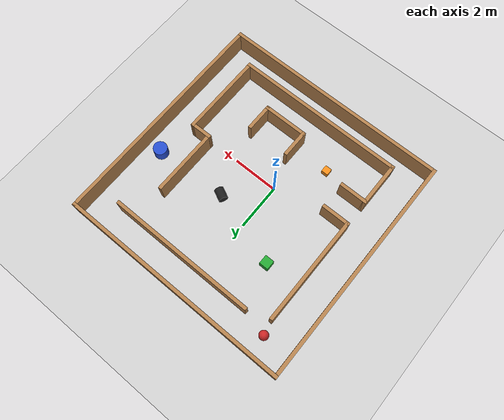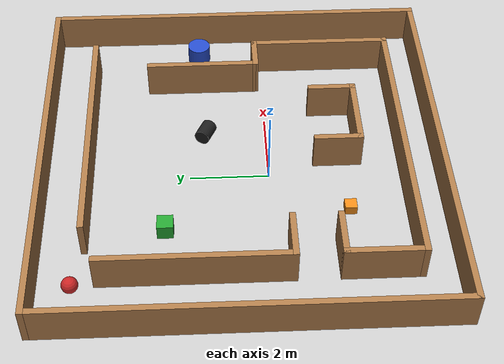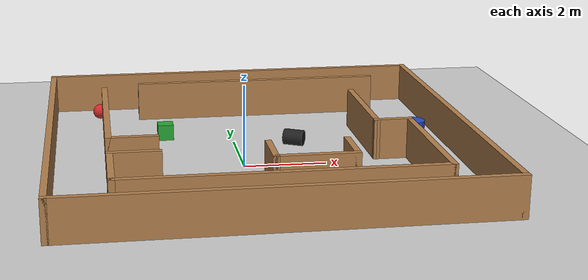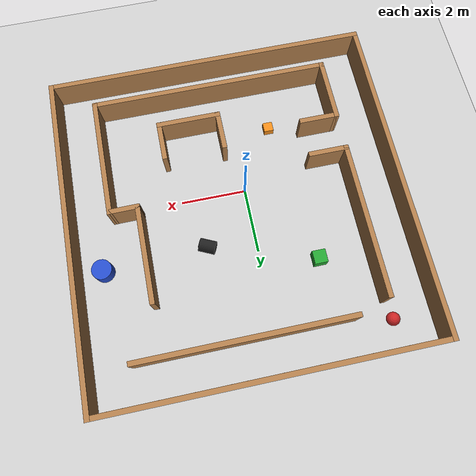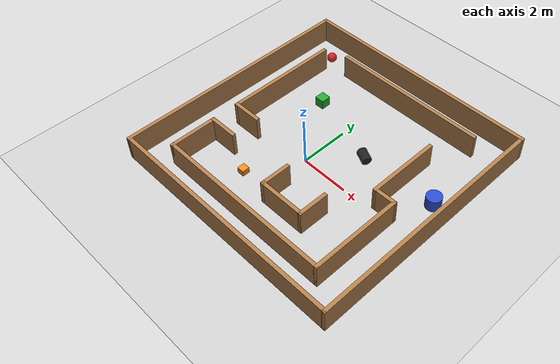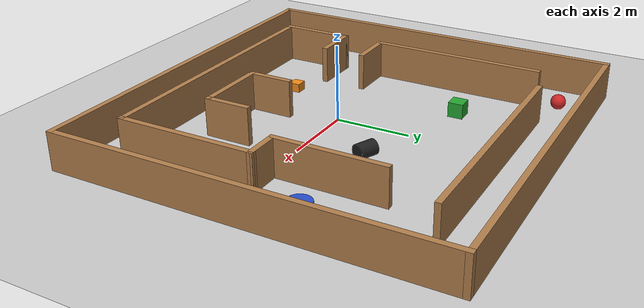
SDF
<sdf version="1.7">
 <world name="default">
  <light name="sun" type="directional">
   <pose>0 0 10 0 -0 0</pose>
   <diffuse>0.8 0.8 0.8 1</diffuse>
   <specular>0.2 0.2 0.2 1</specular>
   <attenuation>
    <range>1000</range>
    <constant>0.9</constant>
    <linear>0.01</linear>
    <quadratic>0.001</quadratic>
   </attenuation>
   <direction>-0.5 0.1 -0.9</direction>
   <spot><inner_angle>0</inner_angle><outer_angle>0</outer_angle><falloff>0</falloff></spot>
  </light>
  <model name="ground_plane">
   <static>1</static>
   <link name="link">
    <collision name="collision">
     <geometry><plane><normal>0 0 1</normal><size>100 100</size></plane></geometry>
     <surface><friction><ode><mu>100</mu><mu2>50</mu2></ode></friction></surface>
    </collision>
    <visual name="visual">
     <cast_shadows>0</cast_shadows>
     <geometry><plane><normal>0 0 1</normal><size>100 100</size></plane></geometry>
     <material>
      <script><uri>file://media/materials/scripts/gazebo.material</uri><name>Gazebo/Grey</name></script>
     </material>
    </visual>
   </link>
  </model>
  <gravity>0 0 -9.8</gravity>
  <magnetic_field>6e-06 2.3e-05 -4.2e-05</magnetic_field>
  <atmosphere type="adiabatic"/>
  <physics type="ode">
   <max_step_size>0.001</max_step_size>
   <real_time_factor>1</real_time_factor>
   <real_time_update_rate>1000</real_time_update_rate>
  </physics>
  <scene><ambient>0.4 0.4 0.4 1</ambient><background>0.7 0.7 0.7 1</background><shadows>1</shadows></scene>
  <audio><device>default</device></audio>
  <spherical_coordinates>
   <surface_model>EARTH_WGS84</surface_model>
   <latitude_deg>0</latitude_deg>
   <longitude_deg>0</longitude_deg>
   <elevation>0</elevation>
   <heading_deg>0</heading_deg>
  </spherical_coordinates>
  <model name="rc">
   <pose>0.39192 0.670732 0 0 -0 0</pose>
   <link name="Wall_2">
    <collision name="Wall_2_Collision">
     <geometry><box><size>10.15 0.15 1</size></box></geometry>
     <pose>0 0 0.5 0 -0 0</pose>
    </collision>
    <visual name="Wall_2_Visual">
     <pose>0 0 0.5 0 -0 0</pose>
     <geometry><box><size>10.15 0.15 1</size></box></geometry>
     <material>
      <script><uri>file://media/materials/scripts/gazebo.material</uri><name>Gazebo/Wood</name></script>
      <ambient>1 1 1 1</ambient>
     </material>
     <meta><layer>0</layer></meta>
    </visual>
    <pose>0 -5 0 0 -0 0</pose>
   </link>
   <link name="Wall_27">
    <collision name="Wall_27_Collision">
     <geometry><box><size>6.5 0.15 1</size></box></geometry>
     <pose>0 0 0.5 0 -0 0</pose>
    </collision>
    <visual name="Wall_27_Visual">
     <pose>0 0 0.5 0 -0 0</pose>
     <geometry><box><size>6.5 0.15 1</size></box></geometry>
     <material>
      <script><uri>file://media/materials/scripts/gazebo.material</uri><name>Gazebo/Wood</name></script>
      <ambient>1 1 1 1</ambient>
     </material>
     <meta><layer>0</layer></meta>
    </visual>
    <pose>0.539 3.864 0 0 -0 0</pose>
   </link>
   <link name="Wall_30">
    <collision name="Wall_30_Collision">
     <geometry><box><size>3 0.15 1</size></box></geometry>
     <pose>0 0 0.5 0 -0 0</pose>
    </collision>
    <visual name="Wall_30_Visual">
     <pose>0 0 0.5 0 -0 0</pose>
     <geometry><box><size>3 0.15 1</size></box></geometry>
     <material>
      <script><uri>file://media/materials/scripts/gazebo.material</uri><name>Gazebo/Wood</name></script>
      <ambient>1 1 1 1</ambient>
     </material>
     <meta><layer>0</layer></meta>
    </visual>
    <pose>2.892 0.937 0 0 -0 -1.5708</pose>
   </link>
   <link name="Wall_32">
    <collision name="Wall_32_Collision">
     <geometry><box><size>4.75 0.15 1</size></box></geometry>
     <pose>0 0 0.5 0 -0 0</pose>
    </collision>
    <visual name="Wall_32_Visual">
     <pose>0 0 0.5 0 -0 0</pose>
     <geometry><box><size>4.75 0.15 1</size></box></geometry>
     <material>
      <script><uri>file://media/materials/scripts/gazebo.material</uri><name>Gazebo/Wood</name></script>
      <ambient>1 1 1 1</ambient>
     </material>
     <meta><layer>0</layer></meta>
    </visual>
    <pose>-3.631 1.217 0 0 -0 -1.5708</pose>
   </link>
   <link name="Wall_35">
    <collision name="Wall_35_Collision">
     <geometry><box><size>2 0.15 1</size></box></geometry>
     <pose>0 0 0.5 0 -0 0</pose>
    </collision>
    <visual name="Wall_35_Visual">
     <pose>0 0 0.5 0 -0 0</pose>
     <geometry><box><size>2 0.15 1</size></box></geometry>
     <material>
      <script><uri>file://media/materials/scripts/gazebo.material</uri><name>Gazebo/Wood</name></script>
      <ambient>1 1 1 1</ambient>
     </material>
     <meta><layer>0</layer></meta>
    </visual>
    <pose>-3.631 -3.158 0 0 -0 1.5708</pose>
   </link>
   <link name="Wall_37">
    <collision name="Wall_37_Collision">
     <geometry><box><size>7.5 0.15 1</size></box></geometry>
     <pose>0 0 0.5 0 -0 0</pose>
    </collision>
    <visual name="Wall_37_Visual">
     <pose>0 0 0.5 0 -0 0</pose>
     <geometry><box><size>7.5 0.15 1</size></box></geometry>
     <material>
      <script><uri>file://media/materials/scripts/gazebo.material</uri><name>Gazebo/Wood</name></script>
      <ambient>1 1 1 1</ambient>
     </material>
     <meta><layer>0</layer></meta>
    </visual>
    <pose>0.044 -4.083 0 0 -0 0</pose>
   </link>
   <link name="Wall_39">
    <collision name="Wall_39_Collision">
     <geometry><box><size>3.75 0.15 1</size></box></geometry>
     <pose>0 0 0.5 0 -0 0</pose>
    </collision>
    <visual name="Wall_39_Visual">
     <pose>0 0 0.5 0 -0 0</pose>
     <geometry><box><size>3.75 0.15 1</size></box></geometry>
     <material>
      <script><uri>file://media/materials/scripts/gazebo.material</uri><name>Gazebo/Wood</name></script>
      <ambient>1 1 1 1</ambient>
     </material>
     <meta><layer>0</layer></meta>
    </visual>
    <pose>3.719 -2.283 0 0 -0 1.5708</pose>
   </link>
   <link name="Wall_42">
    <collision name="Wall_42_Collision">
     <geometry><box><size>1.25 0.15 1</size></box></geometry>
     <pose>0 0 0.5 0 -0 0</pose>
    </collision>
    <visual name="Wall_42_Visual">
     <pose>0 0 0.5 0 -0 0</pose>
     <geometry><box><size>1.25 0.15 1</size></box></geometry>
     <material>
      <script><uri>file://media/materials/scripts/gazebo.material</uri><name>Gazebo/Wood</name></script>
      <ambient>1 1 1 1</ambient>
     </material>
     <meta><layer>0</layer></meta>
    </visual>
    <pose>-3.081 -1.083 0 0 -0 0</pose>
   </link>
   <link name="Wall_45">
    <collision name="Wall_45_Collision">
     <geometry><box><size>1.25 0.15 1</size></box></geometry>
     <pose>0 0 0.5 0 -0 0</pose>
    </collision>
    <visual name="Wall_45_Visual">
     <pose>0 0 0.5 0 -0 0</pose>
     <geometry><box><size>1.25 0.15 1</size></box></geometry>
     <material>
      <script><uri>file://media/materials/scripts/gazebo.material</uri><name>Gazebo/Wood</name></script>
      <ambient>1 1 1 1</ambient>
     </material>
     <meta><layer>0</layer></meta>
    </visual>
    <pose>-3.081 -2.233 0 0 -0 0</pose>
   </link>
   <link name="Wall_47">
    <collision name="Wall_47_Collision">
     <geometry><box><size>0.977155 0.15 1</size></box></geometry>
     <pose>0 0 0.5 0 -0 0</pose>
    </collision>
    <visual name="Wall_47_Visual">
     <pose>0 0 0.5 0 -0 0</pose>
     <geometry><box><size>0.977155 0.15 1</size></box></geometry>
     <material>
      <script><uri>file://media/materials/scripts/gazebo.material</uri><name>Gazebo/Wood</name></script>
      <ambient>1 1 1 1</ambient>
     </material>
     <meta><layer>0</layer></meta>
    </visual>
    <pose>3.3055 -0.4855 0 0 -0 0.006046</pose>
   </link>
   <link name="Wall_49">
    <collision name="Wall_49_Collision">
     <geometry><box><size>1.25 0.15 1</size></box></geometry>
     <pose>0 0 0.5 0 -0 0</pose>
    </collision>
    <visual name="Wall_49_Visual">
     <pose>0 0 0.5 0 -0 0</pose>
     <geometry><box><size>1.25 0.15 1</size></box></geometry>
     <material>
      <script><uri>file://media/materials/scripts/gazebo.material</uri><name>Gazebo/Wood</name></script>
      <ambient>1 1 1 1</ambient>
     </material>
     <meta><layer>0</layer></meta>
    </visual>
    <pose>0.001 -2.445 0 0 -0 -1.5708</pose>
   </link>
   <link name="Wall_5">
    <collision name="Wall_5_Collision">
     <geometry><box><size>10.15 0.15 1</size></box></geometry>
     <pose>0 0 0.5 0 -0 0</pose>
    </collision>
    <visual name="Wall_5_Visual">
     <pose>0 0 0.5 0 -0 0</pose>
     <geometry><box><size>10.15 0.15 1</size></box></geometry>
     <material>
      <script><uri>file://media/materials/scripts/gazebo.material</uri><name>Gazebo/Wood</name></script>
      <ambient>1 1 1 1</ambient>
     </material>
     <meta><layer>0</layer></meta>
    </visual>
    <pose>5 0 0 0 -0 1.5708</pose>
   </link>
   <link name="Wall_50">
    <collision name="Wall_50_Collision">
     <geometry><box><size>2 0.15 1</size></box></geometry>
     <pose>0 0 0.5 0 -0 0</pose>
    </collision>
    <visual name="Wall_50_Visual">
     <pose>0 0 0.5 0 -0 0</pose>
     <geometry><box><size>2 0.15 1</size></box></geometry>
     <material>
      <script><uri>file://media/materials/scripts/gazebo.material</uri><name>Gazebo/Wood</name></script>
      <ambient>1 1 1 1</ambient>
     </material>
     <meta><layer>0</layer></meta>
    </visual>
    <pose>0.926 -2.995 0 0 -0 0</pose>
   </link>
   <link name="Wall_51">
    <collision name="Wall_51_Collision">
     <geometry><box><size>1.25 0.15 1</size></box></geometry>
     <pose>0 0 0.5 0 -0 0</pose>
    </collision>
    <visual name="Wall_51_Visual">
     <pose>0 0 0.5 0 -0 0</pose>
     <geometry><box><size>1.25 0.15 1</size></box></geometry>
     <material>
      <script><uri>file://media/materials/scripts/gazebo.material</uri><name>Gazebo/Wood</name></script>
      <ambient>1 1 1 1</ambient>
     </material>
     <meta><layer>0</layer></meta>
    </visual>
    <pose>1.851 -2.445 0 0 -0 1.5708</pose>
   </link>
   <link name="Wall_6">
    <collision name="Wall_6_Collision">
     <geometry><box><size>10.15 0.15 1</size></box></geometry>
     <pose>0 0 0.5 0 -0 0</pose>
    </collision>
    <visual name="Wall_6_Visual">
     <pose>0 0 0.5 0 -0 0</pose>
     <geometry><box><size>10.15 0.15 1</size></box></geometry>
     <material>
      <script><uri>file://media/materials/scripts/gazebo.material</uri><name>Gazebo/Wood</name></script>
      <ambient>1 1 1 1</ambient>
     </material>
     <meta><layer>0</layer></meta>
    </visual>
    <pose>0 5 0 0 -0 3.14159</pose>
   </link>
   <link name="Wall_7">
    <collision name="Wall_7_Collision">
     <geometry><box><size>10.15 0.15 1</size></box></geometry>
     <pose>0 0 0.5 0 -0 0</pose>
    </collision>
    <visual name="Wall_7_Visual">
     <pose>0 0 0.5 0 -0 0</pose>
     <geometry><box><size>10.15 0.15 1</size></box></geometry>
     <material>
      <script><uri>file://media/materials/scripts/gazebo.material</uri><name>Gazebo/Wood</name></script>
      <ambient>1 1 1 1</ambient>
     </material>
     <meta><layer>0</layer></meta>
    </visual>
    <pose>-5 0 0 0 -0 -1.5708</pose>
   </link>
   <static>1</static>
  </model>
  <model name="rc_model">
   <link name="link">
    <inertial>
     <mass>1</mass>
     <inertia><ixx>0.1</ixx><ixy>0</ixy><ixz>0</ixz><iyy>0.1</iyy><iyz>0</iyz><izz>0.1</izz></inertia>
    </inertial>
    <pose>-6.22121 5.85176 -0.284395 0 -2e-06 0</pose>
    <visual name="visual">
     <geometry><sphere><radius>0.2</radius></sphere></geometry>
     <material>
      <script><name>Gazebo/Red</name><uri>file://media/materials/scripts/gazebo.material</uri></script>
      <shader type="pixel"><normal_map>__default__</normal_map></shader>
      <ambient>1 0 0 1</ambient>
      <diffuse>1 0 0 1</diffuse>
      <specular>0.1 0.1 0.1 1</specular>
      <emissive>0 0 0 1</emissive>
     </material>
    </visual>
    <collision name="collision">
     <geometry><sphere><radius>0.5</radius></sphere></geometry>
     <surface>
      <friction>
       <ode><mu>1</mu><mu2>1</mu2><fdir1>0 0 0</fdir1><slip1>0</slip1><slip2>0</slip2></ode>
       <torsional>
        <coefficient>1</coefficient>
        <patch_radius>0</patch_radius>
        <surface_radius>0</surface_radius>
        <use_patch_radius>1</use_patch_radius>
        <ode><slip>0</slip></ode>
       </torsional>
      </friction>
      <bounce><restitution_coefficient>0</restitution_coefficient><threshold>1e+06</threshold></bounce>
      <contact>
       <collide_without_contact>0</collide_without_contact>
       <collide_without_contact_bitmask>1</collide_without_contact_bitmask>
       <collide_bitmask>1</collide_bitmask>
       <ode>
        <soft_cfm>0</soft_cfm>
        <soft_erp>0.2</soft_erp>
        <kp>1e+13</kp>
        <kd>1</kd>
        <max_vel>0.01</max_vel>
        <min_depth>0</min_depth>
       </ode>
       <bullet>
        <split_impulse>1</split_impulse>
        <split_impulse_penetration_threshold>-0.01</split_impulse_penetration_threshold>
        <soft_cfm>0</soft_cfm>
        <soft_erp>0.2</soft_erp>
        <kp>1e+13</kp>
        <kd>1</kd>
       </bullet>
      </contact>
     </surface>
    </collision>
   </link>
   <link name="link_0">
    <inertial>
     <mass>1</mass>
     <inertia>
      <ixx>0.166667</ixx>
      <ixy>0</ixy>
      <ixz>0</ixz>
      <iyy>0.166667</iyy>
      <iyz>0</iyz>
      <izz>0.166667</izz>
     </inertia>
    </inertial>
    <pose>-4.56747 3.68861 -0.301412 0.02863 -0.023748 0.007629</pose>
    <visual name="visual">
     <geometry><box><size>0.4 0.4 0.4</size></box></geometry>
     <material>
      <lighting>1</lighting>
      <script><uri>file://media/materials/scripts/gazebo.material</uri><name>Gazebo/Green</name></script>
      <shader type="pixel"><normal_map>__default__</normal_map></shader>
      <ambient>0 1 0 1</ambient>
      <diffuse>0 1 0 1</diffuse>
      <specular>0.1 0.1 0.1 1</specular>
      <emissive>0 0 0 1</emissive>
     </material>
    </visual>
    <collision name="collision">
     <geometry><box><size>1 1 1</size></box></geometry>
     <surface>
      <friction>
       <ode><mu>1</mu><mu2>1</mu2><fdir1>0 0 0</fdir1><slip1>0</slip1><slip2>0</slip2></ode>
       <torsional>
        <coefficient>1</coefficient>
        <patch_radius>0</patch_radius>
        <surface_radius>0</surface_radius>
        <use_patch_radius>1</use_patch_radius>
        <ode><slip>0</slip></ode>
       </torsional>
      </friction>
      <bounce><restitution_coefficient>0</restitution_coefficient><threshold>1e+06</threshold></bounce>
      <contact>
       <collide_without_contact>0</collide_without_contact>
       <collide_without_contact_bitmask>1</collide_without_contact_bitmask>
       <collide_bitmask>1</collide_bitmask>
       <ode>
        <soft_cfm>0</soft_cfm>
        <soft_erp>0.2</soft_erp>
        <kp>1e+13</kp>
        <kd>1</kd>
        <max_vel>0.01</max_vel>
        <min_depth>0</min_depth>
       </ode>
       <bullet>
        <split_impulse>1</split_impulse>
        <split_impulse_penetration_threshold>-0.01</split_impulse_penetration_threshold>
        <soft_cfm>0</soft_cfm>
        <soft_erp>0.2</soft_erp>
        <kp>1e+13</kp>
        <kd>1</kd>
       </bullet>
      </contact>
     </surface>
    </collision>
   </link>
   <link name="link_2">
    <inertial>
     <mass>1</mass>
     <inertia><ixx>0.145833</ixx><ixy>0</ixy><ixz>0</ixz><iyy>0.145833</iyy><iyz>0</iyz><izz>0.125</izz></inertia>
    </inertial>
    <pose>1.80551 2.83515 -0.138892 0.028631 -0.023748 0.007629</pose>
    <visual name="visual">
     <geometry><cylinder><radius>0.3</radius><length>0.5</length></cylinder></geometry>
     <material>
      <lighting>1</lighting>
      <script><uri>file://media/materials/scripts/gazebo.material</uri><name>Gazebo/Blue</name></script>
      <shader type="pixel"><normal_map>__default__</normal_map></shader>
      <ambient>0 0 1 1</ambient>
      <diffuse>0 0 1 1</diffuse>
      <specular>0.1 0.1 0.1 1</specular>
      <emissive>0 0 0 1</emissive>
     </material>
    </visual>
    <collision name="collision">
     <geometry><cylinder><radius>0.5</radius><length>1</length></cylinder></geometry>
     <surface>
      <friction>
       <ode><mu>1</mu><mu2>1</mu2><fdir1>0 0 0</fdir1><slip1>0</slip1><slip2>0</slip2></ode>
       <torsional>
        <coefficient>1</coefficient>
        <patch_radius>0</patch_radius>
        <surface_radius>0</surface_radius>
        <use_patch_radius>1</use_patch_radius>
        <ode><slip>0</slip></ode>
       </torsional>
      </friction>
      <bounce><restitution_coefficient>0</restitution_coefficient><threshold>1e+06</threshold></bounce>
      <contact>
       <collide_without_contact>0</collide_without_contact>
       <collide_without_contact_bitmask>1</collide_without_contact_bitmask>
       <collide_bitmask>1</collide_bitmask>
       <ode>
        <soft_cfm>0</soft_cfm>
        <soft_erp>0.2</soft_erp>
        <kp>1e+13</kp>
        <kd>1</kd>
        <max_vel>0.01</max_vel>
        <min_depth>0</min_depth>
       </ode>
       <bullet>
        <split_impulse>1</split_impulse>
        <split_impulse_penetration_threshold>-0.01</split_impulse_penetration_threshold>
        <soft_cfm>0</soft_cfm>
        <soft_erp>0.2</soft_erp>
        <kp>1e+13</kp>
        <kd>1</kd>
       </bullet>
      </contact>
     </surface>
    </collision>
   </link>
   <link name="link_3">
    <inertial>
     <mass>1</mass>
     <inertia>
      <ixx>0.166667</ixx>
      <ixy>0</ixy>
      <ixz>0</ixz>
      <iyy>0.166667</iyy>
      <iyz>0</iyz>
      <izz>0.166667</izz>
     </inertia>
    </inertial>
    <pose>-3.98917 -0.863934 -0.504258 0.02863 -0.023748 0.007629</pose>
    <visual name="visual">
     <geometry><box><size>0.3 0.3 0.24</size></box></geometry>
     <material>
      <lighting>1</lighting>
      <script><uri>file://media/materials/scripts/gazebo.material</uri><name>Gazebo/Orange</name></script>
      <shader type="pixel"><normal_map>__default__</normal_map></shader>
      <ambient>1 0.509 0.047 1</ambient>
      <diffuse>1 0.509 0.047 1</diffuse>
      <specular>0.5 0.5 0.5 1</specular>
      <emissive>0 0 0 1</emissive>
     </material>
    </visual>
    <collision name="collision">
     <geometry><box><size>1 1 1</size></box></geometry>
     <surface>
      <friction>
       <ode><mu>1</mu><mu2>1</mu2><fdir1>0 0 0</fdir1><slip1>0</slip1><slip2>0</slip2></ode>
       <torsional>
        <coefficient>1</coefficient>
        <patch_radius>0</patch_radius>
        <surface_radius>0</surface_radius>
        <use_patch_radius>1</use_patch_radius>
        <ode><slip>0</slip></ode>
       </torsional>
      </friction>
      <bounce><restitution_coefficient>0</restitution_coefficient><threshold>1e+06</threshold></bounce>
      <contact>
       <collide_without_contact>0</collide_without_contact>
       <collide_without_contact_bitmask>1</collide_without_contact_bitmask>
       <collide_bitmask>1</collide_bitmask>
       <ode>
        <soft_cfm>0</soft_cfm>
        <soft_erp>0.2</soft_erp>
        <kp>1e+13</kp>
        <kd>1</kd>
        <max_vel>0.01</max_vel>
        <min_depth>0</min_depth>
       </ode>
       <bullet>
        <split_impulse>1</split_impulse>
        <split_impulse_penetration_threshold>-0.01</split_impulse_penetration_threshold>
        <soft_cfm>0</soft_cfm>
        <soft_erp>0.2</soft_erp>
        <kp>1e+13</kp>
        <kd>1</kd>
       </bullet>
      </contact>
     </surface>
    </collision>
   </link>
   <link name="link_5">
    <inertial>
     <mass>1</mass>
     <inertia><ixx>0.145833</ixx><ixy>0</ixy><ixz>0</ixz><iyy>0.145833</iyy><iyz>0</iyz><izz>0.125</izz></inertia>
    </inertial>
    <pose>-1.3539 2.68331 -0.257414 1.5601 0.03775 -2.00278</pose>
    <visual name="visual">
     <geometry><cylinder><radius>0.2</radius><length>0.5</length></cylinder></geometry>
     <material>
      <lighting>1</lighting>
      <script><uri>file://media/materials/scripts/gazebo.material</uri><name>Gazebo/Black</name></script>
      <shader type="pixel"><normal_map>__default__</normal_map></shader>
      <ambient>0 0 0 1</ambient>
      <diffuse>0 0 0 1</diffuse>
      <specular>0.1 0.1 0.1 1</specular>
      <emissive>0 0 0 1</emissive>
     </material>
    </visual>
    <collision name="collision">
     <geometry><cylinder><radius>0.5</radius><length>1</length></cylinder></geometry>
     <surface>
      <friction>
       <ode><mu>1</mu><mu2>1</mu2><fdir1>0 0 0</fdir1><slip1>0</slip1><slip2>0</slip2></ode>
       <torsional>
        <coefficient>1</coefficient>
        <patch_radius>0</patch_radius>
        <surface_radius>0</surface_radius>
        <use_patch_radius>1</use_patch_radius>
        <ode><slip>0</slip></ode>
       </torsional>
      </friction>
      <bounce><restitution_coefficient>0</restitution_coefficient><threshold>1e+06</threshold></bounce>
      <contact>
       <collide_without_contact>0</collide_without_contact>
       <collide_without_contact_bitmask>1</collide_without_contact_bitmask>
       <collide_bitmask>1</collide_bitmask>
       <ode>
        <soft_cfm>0</soft_cfm>
        <soft_erp>0.2</soft_erp>
        <kp>1e+13</kp>
        <kd>1</kd>
        <max_vel>0.01</max_vel>
        <min_depth>0</min_depth>
       </ode>
       <bullet>
        <split_impulse>1</split_impulse>
        <split_impulse_penetration_threshold>-0.01</split_impulse_penetration_threshold>
        <soft_cfm>0</soft_cfm>
        <soft_erp>0.2</soft_erp>
        <kp>1e+13</kp>
        <kd>1</kd>
       </bullet>
      </contact>
     </surface>
    </collision>
   </link>
   <static>0</static>
   <pose>2.82454 -1.10598 0.5 -0.028819 0.023519 -0.008308</pose>
  </model>
 </world>
</sdf>
